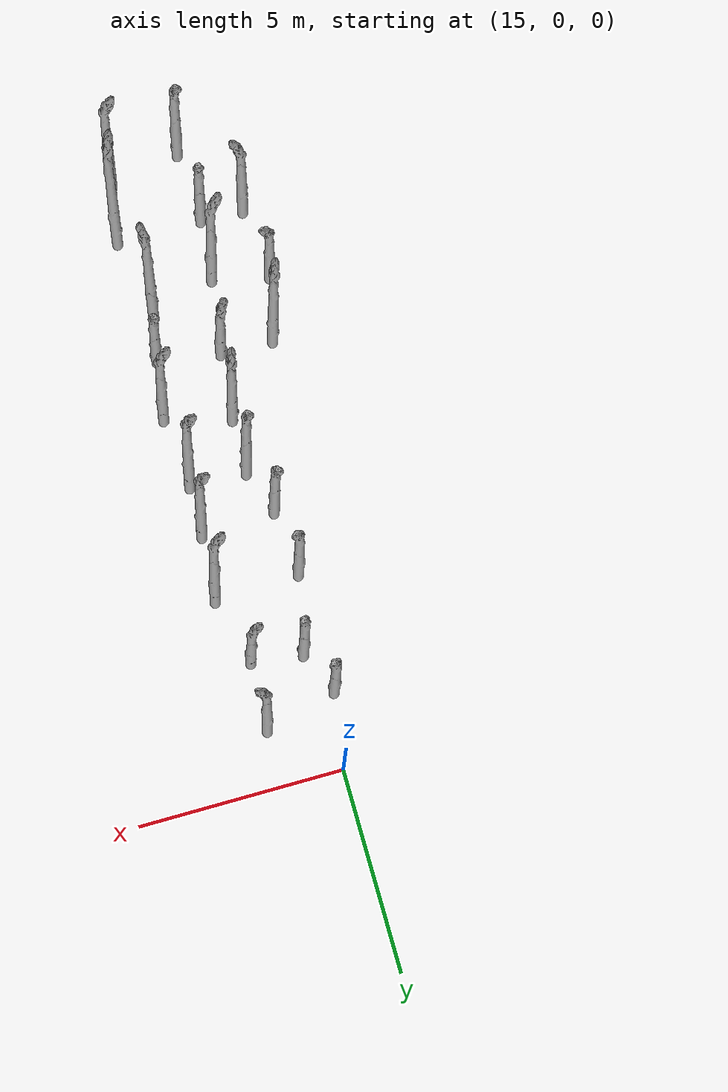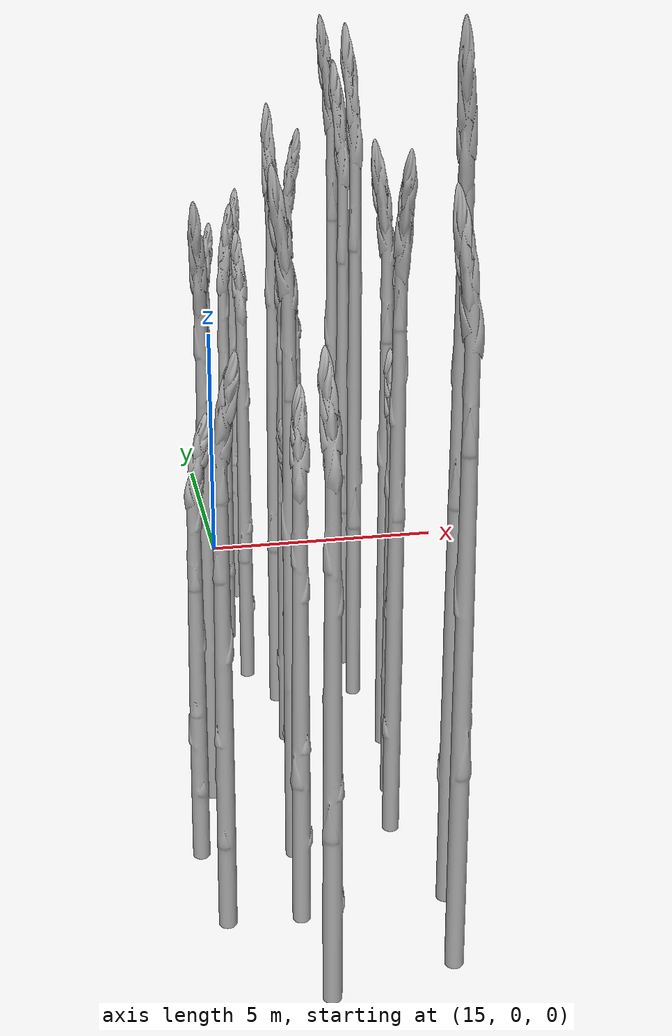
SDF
<sdf version="1.6">
 <world name="default">
  <model name="asparagus_65">
   <pose>13.7354 -13.5335 0 0 -0 -0.341545</pose>
   <static>1</static>
   <link name="asparagus_65">
    <visual name="visual">
     <geometry>
      <mesh><uri>model://Asparagus/meshes/asparagus.obj</uri><scale>0.3 0.3 0.401042</scale></mesh>
     </geometry>
    </visual>
    <collision name="collision">
     <geometry>
      <mesh><uri>model://Asparagus/meshes/asparagus.obj</uri><scale>0.3 0.3 0.401042</scale></mesh>
     </geometry>
    </collision>
   </link>
  </model>
  <model name="asparagus_68">
   <pose>13.5521 -11.7698 0 0 -0 0.360578</pose>
   <static>1</static>
   <link name="asparagus_68">
    <visual name="visual">
     <geometry>
      <mesh><uri>model://Asparagus/meshes/asparagus.obj</uri><scale>0.3 0.3 0.335376</scale></mesh>
     </geometry>
    </visual>
    <collision name="collision">
     <geometry>
      <mesh><uri>model://Asparagus/meshes/asparagus.obj</uri><scale>0.3 0.3 0.335376</scale></mesh>
     </geometry>
    </collision>
   </link>
  </model>
  <model name="asparagus_71">
   <pose>13.7931 -10.3486 0 0 -0 -1.95721</pose>
   <static>1</static>
   <link name="asparagus_71">
    <visual name="visual">
     <geometry>
      <mesh><uri>model://Asparagus/meshes/asparagus.obj</uri><scale>0.3 0.3 0.463046</scale></mesh>
     </geometry>
    </visual>
    <collision name="collision">
     <geometry>
      <mesh><uri>model://Asparagus/meshes/asparagus.obj</uri><scale>0.3 0.3 0.463046</scale></mesh>
     </geometry>
    </collision>
   </link>
  </model>
  <model name="asparagus_122">
   <pose>14.7782 -15.1703 0 0 -0 1.8504</pose>
   <static>1</static>
   <link name="asparagus_122">
    <visual name="visual">
     <geometry>
      <mesh><uri>model://Asparagus/meshes/asparagus.obj</uri><scale>0.3 0.3 0.42061</scale></mesh>
     </geometry>
    </visual>
    <collision name="collision">
     <geometry>
      <mesh><uri>model://Asparagus/meshes/asparagus.obj</uri><scale>0.3 0.3 0.42061</scale></mesh>
     </geometry>
    </collision>
   </link>
  </model>
  <model name="asparagus_125">
   <pose>14.7042 -13.4732 0 0 -0 1.42448</pose>
   <static>1</static>
   <link name="asparagus_125">
    <visual name="visual">
     <geometry>
      <mesh><uri>model://Asparagus/meshes/asparagus.obj</uri><scale>0.3 0.3 0.375462</scale></mesh>
     </geometry>
    </visual>
    <collision name="collision">
     <geometry>
      <mesh><uri>model://Asparagus/meshes/asparagus.obj</uri><scale>0.3 0.3 0.375462</scale></mesh>
     </geometry>
    </collision>
   </link>
  </model>
  <model name="asparagus_128">
   <pose>14.7419 -12.0951 0 0 -0 -2.98212</pose>
   <static>1</static>
   <link name="asparagus_128">
    <visual name="visual">
     <geometry>
      <mesh><uri>model://Asparagus/meshes/asparagus.obj</uri><scale>0.3 0.3 0.497969</scale></mesh>
     </geometry>
    </visual>
    <collision name="collision">
     <geometry>
      <mesh><uri>model://Asparagus/meshes/asparagus.obj</uri><scale>0.3 0.3 0.497969</scale></mesh>
     </geometry>
    </collision>
   </link>
  </model>
  <model name="asparagus_131">
   <pose>15.0387 -10.381 0 0 -0 -2.26892</pose>
   <static>1</static>
   <link name="asparagus_131">
    <visual name="visual">
     <geometry>
      <mesh><uri>model://Asparagus/meshes/asparagus.obj</uri><scale>0.3 0.3 0.309596</scale></mesh>
     </geometry>
    </visual>
    <collision name="collision">
     <geometry>
      <mesh><uri>model://Asparagus/meshes/asparagus.obj</uri><scale>0.3 0.3 0.309596</scale></mesh>
     </geometry>
    </collision>
   </link>
  </model>
  <model name="asparagus_134">
   <pose>15.2314 -8.7894 0 0 -0 -1.84302</pose>
   <static>1</static>
   <link name="asparagus_134">
    <visual name="visual">
     <geometry>
      <mesh><uri>model://Asparagus/meshes/asparagus.obj</uri><scale>0.3 0.3 0.426971</scale></mesh>
     </geometry>
    </visual>
    <collision name="collision">
     <geometry>
      <mesh><uri>model://Asparagus/meshes/asparagus.obj</uri><scale>0.3 0.3 0.426971</scale></mesh>
     </geometry>
    </collision>
   </link>
  </model>
  <model name="asparagus_137">
   <pose>15.2885 -7.2965 0 0 -0 1.74739</pose>
   <static>1</static>
   <link name="asparagus_137">
    <visual name="visual">
     <geometry>
      <mesh><uri>model://Asparagus/meshes/asparagus.obj</uri><scale>0.3 0.3 0.508424</scale></mesh>
     </geometry>
    </visual>
    <collision name="collision">
     <geometry>
      <mesh><uri>model://Asparagus/meshes/asparagus.obj</uri><scale>0.3 0.3 0.508424</scale></mesh>
     </geometry>
    </collision>
   </link>
  </model>
  <model name="asparagus_140">
   <pose>14.9034 -6.223 0 0 -0 1.77158</pose>
   <static>1</static>
   <link name="asparagus_140">
    <visual name="visual">
     <geometry>
      <mesh><uri>model://Asparagus/meshes/asparagus.obj</uri><scale>0.3 0.3 0.402442</scale></mesh>
     </geometry>
    </visual>
    <collision name="collision">
     <geometry>
      <mesh><uri>model://Asparagus/meshes/asparagus.obj</uri><scale>0.3 0.3 0.402442</scale></mesh>
     </geometry>
    </collision>
   </link>
  </model>
  <model name="asparagus_143">
   <pose>14.8282 -4.66503 0 0 -0 0.766425</pose>
   <static>1</static>
   <link name="asparagus_143">
    <visual name="visual">
     <geometry>
      <mesh><uri>model://Asparagus/meshes/asparagus.obj</uri><scale>0.3 0.3 0.411211</scale></mesh>
     </geometry>
    </visual>
    <collision name="collision">
     <geometry>
      <mesh><uri>model://Asparagus/meshes/asparagus.obj</uri><scale>0.3 0.3 0.411211</scale></mesh>
     </geometry>
    </collision>
   </link>
  </model>
  <model name="asparagus_146">
   <pose>15.2175 -2.76647 0 0 -0 1.10122</pose>
   <static>1</static>
   <link name="asparagus_146">
    <visual name="visual">
     <geometry>
      <mesh><uri>model://Asparagus/meshes/asparagus.obj</uri><scale>0.3 0.3 0.409329</scale></mesh>
     </geometry>
    </visual>
    <collision name="collision">
     <geometry>
      <mesh><uri>model://Asparagus/meshes/asparagus.obj</uri><scale>0.3 0.3 0.409329</scale></mesh>
     </geometry>
    </collision>
   </link>
  </model>
  <model name="asparagus_149">
   <pose>14.7782 -1.73817 0 0 -0 0.860858</pose>
   <static>1</static>
   <link name="asparagus_149">
    <visual name="visual">
     <geometry>
      <mesh><uri>model://Asparagus/meshes/asparagus.obj</uri><scale>0.3 0.3 0.369602</scale></mesh>
     </geometry>
    </visual>
    <collision name="collision">
     <geometry>
      <mesh><uri>model://Asparagus/meshes/asparagus.obj</uri><scale>0.3 0.3 0.369602</scale></mesh>
     </geometry>
    </collision>
   </link>
  </model>
  <model name="asparagus_182">
   <pose>16.4306 -14.8818 0 0 -0 2.77283</pose>
   <static>1</static>
   <link name="asparagus_182">
    <visual name="visual">
     <geometry>
      <mesh><uri>model://Asparagus/meshes/asparagus.obj</uri><scale>0.3 0.3 0.503853</scale></mesh>
     </geometry>
    </visual>
    <collision name="collision">
     <geometry>
      <mesh><uri>model://Asparagus/meshes/asparagus.obj</uri><scale>0.3 0.3 0.503853</scale></mesh>
     </geometry>
    </collision>
   </link>
  </model>
  <model name="asparagus_185">
   <pose>16.6975 -13.6167 0 0 -0 -2.11521</pose>
   <static>1</static>
   <link name="asparagus_185">
    <visual name="visual">
     <geometry>
      <mesh><uri>model://Asparagus/meshes/asparagus.obj</uri><scale>0.3 0.3 0.587315</scale></mesh>
     </geometry>
    </visual>
    <collision name="collision">
     <geometry>
      <mesh><uri>model://Asparagus/meshes/asparagus.obj</uri><scale>0.3 0.3 0.587315</scale></mesh>
     </geometry>
    </collision>
   </link>
  </model>
  <model name="asparagus_188">
   <pose>16.4017 -11.7756 0 0 -0 -1.25862</pose>
   <static>1</static>
   <link name="asparagus_188">
    <visual name="visual">
     <geometry>
      <mesh><uri>model://Asparagus/meshes/asparagus.obj</uri><scale>0.3 0.3 0.50331</scale></mesh>
     </geometry>
    </visual>
    <collision name="collision">
     <geometry>
      <mesh><uri>model://Asparagus/meshes/asparagus.obj</uri><scale>0.3 0.3 0.50331</scale></mesh>
     </geometry>
    </collision>
   </link>
  </model>
  <model name="asparagus_191">
   <pose>16.6059 -10.4816 0 0 -0 1.67033</pose>
   <static>1</static>
   <link name="asparagus_191">
    <visual name="visual">
     <geometry>
      <mesh><uri>model://Asparagus/meshes/asparagus.obj</uri><scale>0.3 0.3 0.35401</scale></mesh>
     </geometry>
    </visual>
    <collision name="collision">
     <geometry>
      <mesh><uri>model://Asparagus/meshes/asparagus.obj</uri><scale>0.3 0.3 0.35401</scale></mesh>
     </geometry>
    </collision>
   </link>
  </model>
  <model name="asparagus_194">
   <pose>16.7554 -9.12812 0 0 -0 3.01563</pose>
   <static>1</static>
   <link name="asparagus_194">
    <visual name="visual">
     <geometry>
      <mesh><uri>model://Asparagus/meshes/asparagus.obj</uri><scale>0.3 0.3 0.491905</scale></mesh>
     </geometry>
    </visual>
    <collision name="collision">
     <geometry>
      <mesh><uri>model://Asparagus/meshes/asparagus.obj</uri><scale>0.3 0.3 0.491905</scale></mesh>
     </geometry>
    </collision>
   </link>
  </model>
  <model name="asparagus_197">
   <pose>16.6233 -7.35572 0 0 -0 2.37089</pose>
   <static>1</static>
   <link name="asparagus_197">
    <visual name="visual">
     <geometry>
      <mesh><uri>model://Asparagus/meshes/asparagus.obj</uri><scale>0.3 0.3 0.566954</scale></mesh>
     </geometry>
    </visual>
    <collision name="collision">
     <geometry>
      <mesh><uri>model://Asparagus/meshes/asparagus.obj</uri><scale>0.3 0.3 0.566954</scale></mesh>
     </geometry>
    </collision>
   </link>
  </model>
  <model name="asparagus_200">
   <pose>16.6687 -6.13563 0 0 -0 2.34675</pose>
   <static>1</static>
   <link name="asparagus_200">
    <visual name="visual">
     <geometry>
      <mesh><uri>model://Asparagus/meshes/asparagus.obj</uri><scale>0.3 0.3 0.535285</scale></mesh>
     </geometry>
    </visual>
    <collision name="collision">
     <geometry>
      <mesh><uri>model://Asparagus/meshes/asparagus.obj</uri><scale>0.3 0.3 0.535285</scale></mesh>
     </geometry>
    </collision>
   </link>
  </model>
  <model name="asparagus_203">
   <pose>16.7555 -4.60791 0 0 -0 3.04662</pose>
   <static>1</static>
   <link name="asparagus_203">
    <visual name="visual">
     <geometry>
      <mesh><uri>model://Asparagus/meshes/asparagus.obj</uri><scale>0.3 0.3 0.566568</scale></mesh>
     </geometry>
    </visual>
    <collision name="collision">
     <geometry>
      <mesh><uri>model://Asparagus/meshes/asparagus.obj</uri><scale>0.3 0.3 0.566568</scale></mesh>
     </geometry>
    </collision>
   </link>
  </model>
  <model name="asparagus_206">
   <pose>16.3351 -3.01049 0 0 -0 -2.97289</pose>
   <static>1</static>
   <link name="asparagus_206">
    <visual name="visual">
     <geometry>
      <mesh><uri>model://Asparagus/meshes/asparagus.obj</uri><scale>0.3 0.3 0.332452</scale></mesh>
     </geometry>
    </visual>
    <collision name="collision">
     <geometry>
      <mesh><uri>model://Asparagus/meshes/asparagus.obj</uri><scale>0.3 0.3 0.332452</scale></mesh>
     </geometry>
    </collision>
   </link>
  </model>
  <model name="asparagus_209">
   <pose>16.5658 -1.34218 0 0 -0 -0.036115</pose>
   <static>1</static>
   <link name="asparagus_209">
    <visual name="visual">
     <geometry>
      <mesh><uri>model://Asparagus/meshes/asparagus.obj</uri><scale>0.3 0.3 0.455251</scale></mesh>
     </geometry>
    </visual>
    <collision name="collision">
     <geometry>
      <mesh><uri>model://Asparagus/meshes/asparagus.obj</uri><scale>0.3 0.3 0.455251</scale></mesh>
     </geometry>
    </collision>
   </link>
  </model>
 </world>
</sdf>
